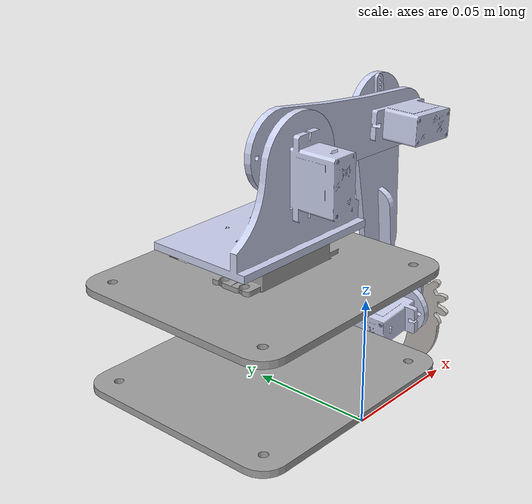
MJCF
<mujoco model="manipulator">
  <compiler angle="radian" meshdir="../meshes" autolimits="true"/>

  <option timestep="0.001" gravity="0 0 -9.81"/>

  <asset>
    <mesh name="base_link" file="base_link.STL" scale="1 1 1"/>
    <mesh name="link_1" file="link_1.STL" scale="1 1 1"/>
    <mesh name="link_2" file="link_2.STL" scale="1 1 1"/>
    <mesh name="link_3" file="link_3.STL" scale="1 1 1"/>
    <mesh name="claw_right" file="claw_right.STL" scale="1 1 1"/>
    <mesh name="claw_left" file="claw_left.STL" scale="1 1 1"/>

    <material name="gray" rgba="0.627 0.627 0.627 1"/>
    <material name="blue" rgba="0.792 0.820 0.933 1"/>
    <material name="silver" rgba="0.776 0.757 0.737 1"/>
  </asset>

  <worldbody>
    <light pos="0 0 1.5" dir="0 0 -1" diffuse="0.8 0.8 0.8"/>
    <light pos="0.5 0.5 1" dir="0 0 -1" diffuse="0.4 0.4 0.4"/>

    <body name="base_link" pos="0 0 0">
      <inertial pos="0.0021253 0.047935 0.027764"
                mass="0.0896"
                diaginertia="0.00010836 6.5382E-05 5.041E-05"/>
      <geom type="mesh" mesh="base_link" material="gray" contype="0" conaffinity="0"/>
      <geom type="mesh" mesh="base_link" material="gray" group="1"/>

      <body name="link_1" pos="-0.0030196 0.046937 0.0635">
        <inertial pos="-0.00017376 -0.015933 0.017371"
                  mass="0.024846"
                  diaginertia="7.0045E-06 7.2894E-06 3.4858E-06"/>
        <joint name="joint_1" type="hinge" axis="0 0 1"
               range="0 3.14" damping="0.1" armature="0.01"/>
        <geom type="mesh" mesh="link_1" material="blue" contype="0" conaffinity="0"/>
        <geom type="mesh" mesh="link_1" material="blue" group="1"/>

        <body name="link_2" pos="0.00031511 -0.0095653 0.034407">
          <inertial pos="0.05189 -0.0024721 -0.0024701"
                    mass="0.01633"
                    diaginertia="5.3932E-06 5.9038E-06 6.549E-07"/>
          <joint name="joint_2" type="hinge" axis="0 -1 0"
                 range="0 3.14" damping="0.1" armature="0.01"/>
          <geom type="mesh" mesh="link_2" material="blue" contype="0" conaffinity="0"/>
          <geom type="mesh" mesh="link_2" material="blue" group="1"/>

          <body name="link_3" pos="0.071531 0.011279 -0.0041348">
            <inertial pos="0.0037357 -0.001707 -0.066045"
                      mass="0.019923"
                      diaginertia="1.4011E-06 5.2184E-06 5.6378E-06"/>
            <joint name="joint_3" type="hinge" axis="0 -1 0"
                   range="0 3.14" damping="0.1" armature="0.01"/>
            <geom type="mesh" mesh="link_3" material="blue" contype="0" conaffinity="0"/>
            <geom type="mesh" mesh="link_3" material="blue" group="1"/>

            <body name="claw_right" pos="0.020925 -0.013767 -0.090331">
              <inertial pos="0.0018122 0.0028283 -0.0079472"
                        mass="0.013225"
                        diaginertia="5.8458E-07 2.7116E-06 3.2338E-06"/>
              <joint name="joint_4" type="hinge" axis="-1 0 0"
                     range="0 0.8" damping="0.05" armature="0.005"/>
              <geom type="mesh" mesh="claw_right" material="silver" contype="0" conaffinity="0"/>
              <geom type="mesh" mesh="claw_right" material="silver" group="1"/>
            </body>

            <body name="claw_left" pos="0.0091023 0.0182709 -0.090512">
              <inertial pos="0.013771 0.012345 -0.01495"
                        mass="0.013641"
                        diaginertia="6.6306E-07 2.8184E-06 3.4175E-06"/>
              <joint name="joint_5" type="hinge" axis="1 0 0"
                     range="0 0.8" damping="0.05" armature="0.005"/>
              <geom type="mesh" mesh="claw_left" pos="0 -0.014 0.0075" material="silver" contype="0" conaffinity="0"/>
              <geom type="mesh" mesh="claw_left" pos="0 -0.014 0.0075" material="silver" group="1"/>
            </body>
          </body>
        </body>
      </body>
    </body>
  </worldbody>

  <actuator>
    <position name="joint_1_actuator" joint="joint_1" kp="10" ctrlrange="0 3.14"/>
    <position name="joint_2_actuator" joint="joint_2" kp="10" ctrlrange="0 3.14"/>
    <position name="joint_3_actuator" joint="joint_3" kp="10" ctrlrange="0 3.14"/>
    <position name="joint_4_actuator" joint="joint_4" kp="5" ctrlrange="0 0.8"/>
    <position name="joint_5_actuator" joint="joint_5" kp="5" ctrlrange="0 0.8"/>
  </actuator>

  <sensor>
    <jointpos name="joint_1_pos" joint="joint_1"/>
    <jointpos name="joint_2_pos" joint="joint_2"/>
    <jointpos name="joint_3_pos" joint="joint_3"/>
    <jointpos name="joint_4_pos" joint="joint_4"/>
    <jointpos name="joint_5_pos" joint="joint_5"/>

    <jointvel name="joint_1_vel" joint="joint_1"/>
    <jointvel name="joint_2_vel" joint="joint_2"/>
    <jointvel name="joint_3_vel" joint="joint_3"/>
    <jointvel name="joint_4_vel" joint="joint_4"/>
    <jointvel name="joint_5_vel" joint="joint_5"/>
  </sensor>
</mujoco>
